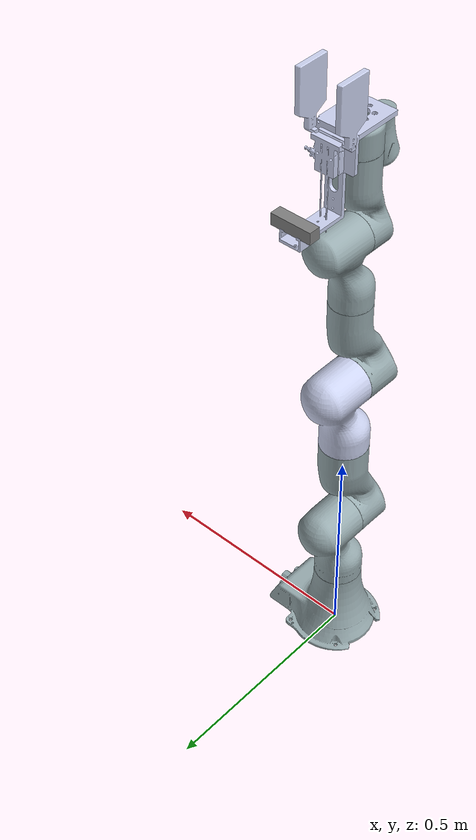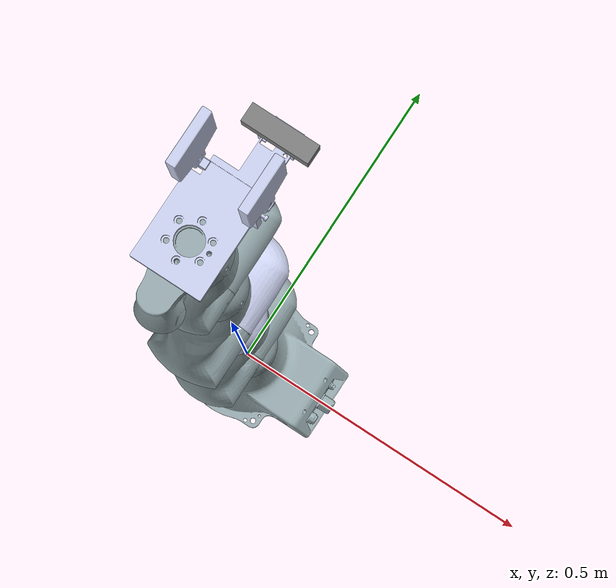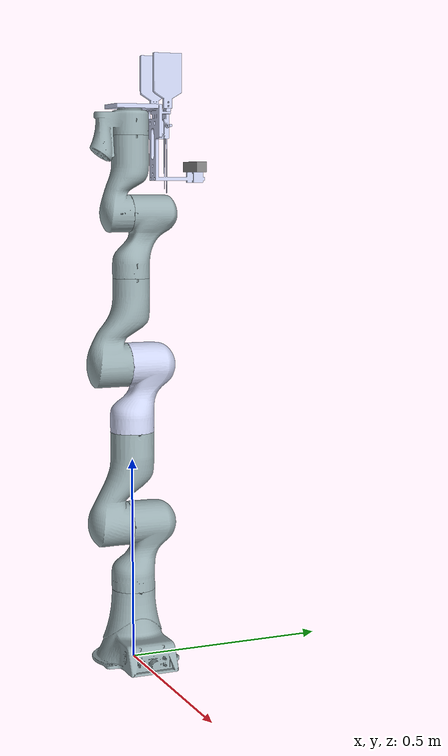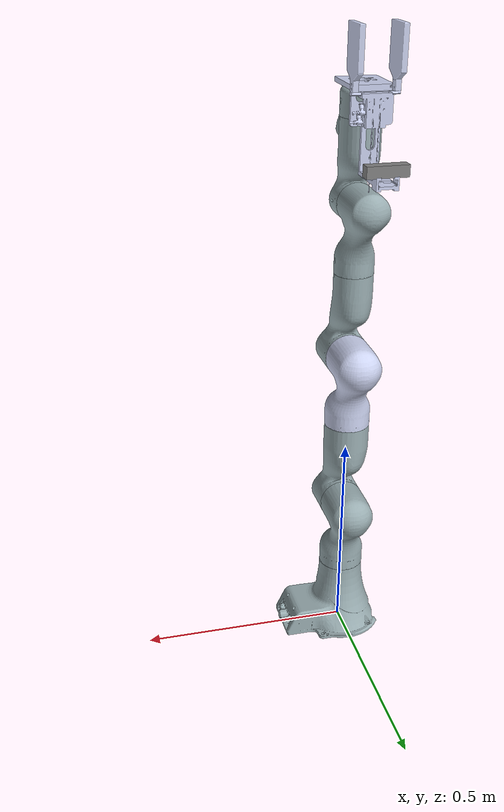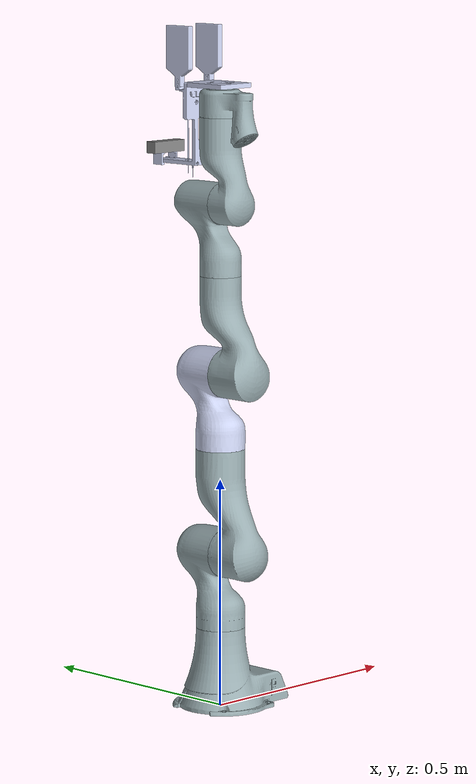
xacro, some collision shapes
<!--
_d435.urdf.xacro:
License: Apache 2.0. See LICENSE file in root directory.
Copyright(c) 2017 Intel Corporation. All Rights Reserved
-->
<?xml version="1.0"?>
<robot name="agv_cobot" xmlns:xacro="http://ros.org/wiki/xacro">
    <link name="agv_cobot_base">

<inertial>
            <origin xyz="0.017961 -8.9547E-06 0.062679" rpy="0 0 0" />
            <mass value="3.1281" />
            <inertia ixx="0.011805" ixy="3.8131E-06" ixz="0.0017999" iyy="0.01583" iyz="-8.2464E-07" izz="0.012949" />
        </inertial>

        <visual>
            <origin xyz="0 0 0" rpy="0 0 0" />
            <geometry>
                <mesh filename="package://agv_cobot/meshes/agv_cobot_base.STL" />
            </geometry>
            <material name="">
                <color rgba="0.59216 0.66667 0.68235 1" />
            </material>
        </visual>
        <collision>
            <origin xyz="0 0 0" rpy="0 0 0" />
            <geometry>
                <mesh filename="package://agv_cobot/meshes/agv_cobot_base.STL" />
            </geometry>
        </collision>
    </link>
    <link name="agv_cobot_1_link">

<inertial>
            <origin xyz="-3.3729E-06 0.025273 0.11306" rpy="0 0 0" />
            <mass value="1.8005" />
            <inertia ixx="0.0095698" ixy="-6.8876E-07" ixz="4.7542E-07" iyy="0.0085643" iyz="-0.0019573" izz="0.0033056" />
        </inertial>

        <visual>
            <origin xyz="0 0 0" rpy="0 0 0" />
            <geometry>
                <mesh filename="package://agv_cobot/meshes/agv_cobot_1_link.STL" />
            </geometry>
            <material name="">
                <color rgba="0.59216 0.66667 0.68235 1" />
            </material>
        </visual>
        <collision>
            <origin xyz="0 0 0" rpy="0 0 0" />
            <geometry>
                <mesh filename="package://agv_cobot/meshes/agv_cobot_1_link.STL" />
            </geometry>
        </collision>
    </link>
    <joint name="agv_cobot_1_joint" type="revolute">
        <origin xyz="0 0 0.175" rpy="0 0 0" />
        <parent link="agv_cobot_base" />
        <child link="agv_cobot_1_link" />
        <axis xyz="0 0 -1" />
        <limit lower="-3.14" upper="3.14" effort="40" velocity="5" />
    </joint>
    <link name="agv_cobot_2_link">

<inertial>
            <origin xyz="6.1113E-06 0.094688 0.012136" rpy="0 0 0" />
            <mass value="2.1853" />
            <inertia ixx="0.017961" ixy="2.0018E-07" ixz="-7.1727E-07" iyy="0.0044673" iyz="0.0045671" izz="0.016295" />
        </inertial>

        <visual>
            <origin xyz="0 0 0" rpy="0 0 0" />
            <geometry>
                <mesh filename="package://agv_cobot/meshes/agv_cobot_2_link.STL" />
            </geometry>
            <material name="">
                <color rgba="0.59216 0.66667 0.68235 1" />
            </material>
        </visual>
        <collision>
            <origin xyz="0 0 0" rpy="0 0 0" />
            <geometry>
                <mesh filename="package://agv_cobot/meshes/agv_cobot_2_link.STL" />
            </geometry>
        </collision>
    </link>
    <joint name="agv_cobot_2_joint" type="revolute">
        <origin xyz="0 -0.0155 0.1665" rpy="1.5708 0 0" />
        <parent link="agv_cobot_1_link" />
        <child link="agv_cobot_2_link" />
        <axis xyz="0 0 -1" />
        <limit lower="-3.14" upper="3.14" effort="40" velocity="5" />
    </joint>
    <link name="agv_cobot_3_link">

<inertial>
            <origin xyz="-1.4376E-06 0.025269 0.11105" rpy="0 0 0" />
            <mass value="1.8005" />
            <inertia ixx="0.0095704" ixy="-7.0638E-07" ixz="4.2065E-07" iyy="0.0085644" iyz="-0.0019581" izz="0.0033061" />
        </inertial>

        <visual>
            <origin xyz="0 0 0" rpy="0 0 0" />
            <geometry>
                <mesh filename="package://agv_cobot/meshes/agv_cobot_3_link.STL" />
            </geometry>
            <material name="">
                <color rgba="0.79216 0.81961 0.93333 1" />
            </material>
        </visual>
        <collision>
            <origin xyz="0 0 0" rpy="0 0 0" />
            <geometry>
                <mesh filename="package://agv_cobot/meshes/agv_cobot_3_link.STL" />
            </geometry>
        </collision>
    </link>
    <joint name="agv_cobot_3_joint" type="revolute">
        <origin xyz="0 0.2295 -0.015501" rpy="-1.5708 0 0" />
        <parent link="agv_cobot_2_link" />
        <child link="agv_cobot_3_link" />
        <axis xyz="0 0 -1" />
        <limit lower="-3.14" upper="3.14" effort="40" velocity="5" />
    </joint>
    <link name="agv_cobot_4_link">

<inertial>
            <origin xyz="-2.8466E-06 0.075669 0.019416" rpy="0 0 0" />
            <mass value="1.8001" />
            <inertia ixx="0.013099" ixy="5.1414E-07" ixz="-1.4286E-07" iyy="0.0033653" iyz="0.003477" izz="0.011753" />
        </inertial>

        <visual>
            <origin xyz="0 0 0" rpy="0 0 0" />
            <geometry>
                <mesh filename="package://agv_cobot/meshes/agv_cobot_4_link.STL" />
            </geometry>
            <material name="">
                <color rgba="0.59216 0.66667 0.68235 1" />
            </material>
        </visual>
        <collision>
            <origin xyz="0 0 0" rpy="0 0 0" />
            <geometry>
                <mesh filename="package://agv_cobot/meshes/agv_cobot_4_link.STL" />
            </geometry>
        </collision>
    </link>
    <joint name="agv_cobot_4_joint" type="revolute">
        <origin xyz="0 -0.0135 0.1645" rpy="1.5708 0 0" />
        <parent link="agv_cobot_3_link" />
        <child link="agv_cobot_4_link" />
        <axis xyz="0 0 -1" />
        <limit lower="-3.14" upper="3.14" effort="40" velocity="5" />
    </joint>
    <link name="agv_cobot_5_link">

<inertial>
            <origin xyz="-1.221E-05 0.031276 0.1025" rpy="0 0 0" />
            <mass value="1.2958" />
            <inertia ixx="0.0059855" ixy="-4.7385E-07" ixz="-5.4528E-07" iyy="0.0048983" iyz="-0.0015266" izz="0.0022675" />
        </inertial>

        <visual>
            <origin xyz="0 0 0" rpy="0 0 0" />
            <geometry>
                <mesh filename="package://agv_cobot/meshes/agv_cobot_5_link.STL" />
            </geometry>
            <material name="">
                <color rgba="0.59216 0.66667 0.68235 1" />
            </material>
        </visual>
        <collision>
            <origin xyz="0 0 0" rpy="0 0 0" />
            <geometry>
                <mesh filename="package://agv_cobot/meshes/agv_cobot_5_link.STL" />
            </geometry>
        </collision>
    </link>
    <joint name="agv_cobot_5_joint" type="revolute">
        <origin xyz="0 0.2178 -0.0135" rpy="-1.5708 0 0" />
        <parent link="agv_cobot_4_link" />
        <child link="agv_cobot_5_link" />
        <axis xyz="0 0 -1" />
        <limit lower="-3.14" upper="3.14" effort="40" velocity="5" />
    </joint>
    <link name="agv_cobot_6_link">

<inertial>
            <origin xyz="-1.2745E-05 0.084294 0.0033492" rpy="0 0 0" />
            <mass value="1.2251" />
            <inertia ixx="0.0062841" ixy="-3.5019E-07" ixz="1.141E-07" iyy="0.0014649" iyz="0.0012842" izz="0.0059858" />
        </inertial>

        <visual>
            <origin xyz="0 0 0" rpy="0 0 0" />
            <geometry>
                <mesh filename="package://agv_cobot/meshes/agv_cobot_6_link.STL" />
            </geometry>
            <material name="">
                <color rgba="0.59216 0.66667 0.68235 1" />
            </material>
        </visual>
        <collision>
            <origin xyz="0 0 0" rpy="0 0 0" />
            <geometry>
                <mesh filename="package://agv_cobot/meshes/agv_cobot_6_link.STL" />
            </geometry>
        </collision>
    </link>
    <joint name="agv_cobot_6_joint" type="revolute">
        <origin xyz="0 -0.0118 0.1482" rpy="1.5708 0 0" />
        <parent link="agv_cobot_5_link" />
        <child link="agv_cobot_6_link" />
        <axis xyz="0 0 -1" />
        <limit lower="-3.14" upper="3.14" effort="40" velocity="5" />
    </joint>
    <link name="agv_cobot_7_link">

<inertial>
            <origin xyz="-4.7405E-05 -0.023063 0.012243" rpy="0 0 0" />
            <mass value="0.54274" />
            <inertia ixx="0.0011664" ixy="-2.239E-07" ixz="4.2105E-07" iyy="0.00063841" iyz="-0.00028236" izz="0.00095196" />
        </inertial>

        <visual>
            <origin xyz="0 0 0" rpy="0 0 0" />
            <geometry>
                <mesh filename="package://agv_cobot/meshes/agv_cobot_7_link.STL" />
            </geometry>
            <material name="">
                <color rgba="0.59216 0.66667 0.68235 1" />
            </material>
        </visual>
        <collision>
            <origin xyz="0 0 0" rpy="0 0 0" />
            <geometry>
                <mesh filename="package://agv_cobot/meshes/agv_cobot_7_link.STL" />
            </geometry>
        </collision>
    </link>
    <joint name="agv_cobot_7_base" type="revolute">
        <origin xyz="0 0.1933 -0.0118" rpy="-1.5708 0 0" />
        <parent link="agv_cobot_6_link" />
        <child link="agv_cobot_7_link" />
        <axis xyz="0 0 -1" />
        <limit lower="-3.14" upper="3.14" effort="40" velocity="5" />
    </joint>
    <link name="agv_grip_base">

<inertial>
            <origin xyz="0.061275 0.00045549 0.055237" rpy="0 0 0" />
            <mass value="0.2556" />
            <inertia ixx="0.00032252" ixy="-3.3909E-07" ixz="-4.8471E-07" iyy="0.00033384" iyz="2.7384E-08" izz="0.00023961" />
        </inertial>

        <visual>
            <origin xyz="0 0 0" rpy="0 0 0" />
            <geometry>
                <mesh filename="package://agv_cobot/meshes/agv_grip_base.STL" />
            </geometry>
            <material name="">
                <color rgba="0.79216 0.81961 0.93333 1" />
            </material>
        </visual>
        <collision>
            <origin xyz="0 0 0" rpy="0 0 0" />
            <geometry>
                <mesh filename="package://agv_cobot/meshes/agv_grip_base.STL" />
            </geometry>
        </collision>
    </link>
    <joint name="agv_grip_connection_joint" type="fixed">
        <origin xyz="0 0 0.0571" rpy="0 3.14 -1.57" />
        <parent link="agv_cobot_7_link" />
        <child link="agv_grip_base" />
        <axis xyz="0 0 0" />
        <limit lower="-3.14" upper="3.14" effort="1" velocity="5" />
    </joint>

    <!-- Realsense Link -->
  <xacro:include filename="$(find agv_cobot)/urdf/_d435.urdf.xacro" />
  <sensor_d435 parent="agv_grip_base">
    <origin xyz="0.15455 0 0.139" rpy="0 1.5707 0"/>
  </sensor_d435>

<link
    name="agv_leftgrip">
    <inertial>
      <origin
        xyz="-0.044287 7.8328E-08 0.080592"
        rpy="0 0 0" />
      <mass
        value="0.091742" />
      <inertia
        ixx="0.00012343"
        ixy="-2.2005E-13"
        ixz="-1.6329E-07"
        iyy="9.1345E-05"
        iyz="-1.62E-10"
        izz="3.4344E-05" />
    </inertial>
    <visual>
      <origin
        xyz="0 0 0"
        rpy="0 0 0" />
      <geometry>
        <mesh
          filename="package://agv_cobot/meshes/agv_leftgrip.STL" />
      </geometry>
      <material
        name="">
        <color
          rgba="0.79216 0.81961 0.93333 1" />
      </material>
    </visual>
    <collision>
      <origin
        xyz="0 0 0"
        rpy="0 0 0" />
      <geometry>
        <mesh
          filename="package://agv_cobot/meshes/agv_leftgrip.STL" />
      </geometry>
    </collision>
  </link>
  <joint
    name="agv_leftgrip_joint"
    type="prismatic">
    <origin
      xyz="0.07915 0 0.0094"
      rpy="3.14 0 1.5707" />
    <parent
      link="agv_grip_base" />
    <child
      link="agv_leftgrip" />
    <axis
      xyz="1 0 0" />
    <limit
      lower="0"
      upper="0.038"
      effort="0"
      velocity="0" />
  </joint>
  <link
    name="agv_rightgrip">
    <inertial>
      <origin
        xyz="0.044287 -7.8328E-08 0.080592"
        rpy="0 0 0" />
      <mass
        value="0.091742" />
      <inertia
        ixx="0.00012343"
        ixy="-2.2005E-13"
        ixz="1.6329E-07"
        iyy="9.1345E-05"
        iyz="1.62E-10"
        izz="3.4344E-05" />
    </inertial>
    <visual>
      <origin
        xyz="0 0 0"
        rpy="0 0 0" />
      <geometry>
        <mesh
          filename="package://agv_cobot/meshes/agv_rightgrip.STL" />
      </geometry>
      <material
        name="">
        <color
          rgba="0.79216 0.81961 0.93333 1" />
      </material>
    </visual>
    <collision>
      <origin
        xyz="0 0 0"
        rpy="0 0 0" />
      <geometry>
        <mesh
          filename="package://agv_cobot/meshes/agv_rightgrip.STL" />
      </geometry>
    </collision>
  </link>
  <joint
    name="agv_rightgrip_joint"
    type="prismatic">
    <origin
      xyz="0.07915 0 0.0094"
      rpy="3.14 0 1.5707" />
    <parent
      link="agv_grip_base" />
    <child
      link="agv_rightgrip" />
    <axis
      xyz="-1 0 0" />
    <limit
      lower="0"
      upper="0.038"
      effort="10"
      velocity="5" />
  </joint>
    <gazebo reference="agv_leftgrip">
      <kp>1000000.0</kp>
      <kd>1.0</kd>
      <mu1>100.0</mu1>
      <mu2>100.0</mu2>
      <minDepth>0.003</minDepth>
    </gazebo>

    <gazebo reference="agv_rightgrip">
      <kp>1000000.0</kp>
      <kd>1.0</kd>
      <mu1>100.0</mu1>
      <mu2>100.0</mu2>
      <minDepth>0.003</minDepth>
    </gazebo>

 <gazebo>
   <plugin name="gazebo_grasp_fix" filename="libgazebo_grasp_fix.so">
        <arm>
           <arm_name>cobot</arm_name>
           <palm_link> agv_grip_base  </palm_link>
           <gripper_link> agv_leftgrip </gripper_link>
           <gripper_link> agv_rightgrip </gripper_link>
        </arm>
       <forces_angle_tolerance>100</forces_angle_tolerance>
       <update_rate>4</update_rate>
       <grip_count_threshold>4</grip_count_threshold>
       <max_grip_count>8</max_grip_count>
       <release_tolerance>0.005</release_tolerance>
       <disable_collisions_on_attach>false</disable_collisions_on_attach>
       <contact_topic>__default_topic__</contact_topic>
    </plugin>
</gazebo>

    <gazebo>
      <gripper name="grasping">
        <grasp_check>
          <attach_steps>1</attach_steps>
          <detach_steps>1</detach_steps>
          <min_contact_count>1</min_contact_count>
        </grasp_check>
        <gripper_link>agv_leftgrip</gripper_link>
        <palm_link>agv_rightgrip</palm_link>
      </gripper>
    </gazebo>

</robot>

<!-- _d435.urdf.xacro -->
<robot name="sensor_d435" xmlns:xacro="http://ros.org/wiki/xacro">
  <!--File includes-->
  <xacro:include filename="$(find agv_cobot)/urdf/_d435.gazebo.xacro"/>

  <xacro:macro name="sensor_d435" params="name:=realSense topics_ns:=realsense parent *origin">
    <xacro:property name="M_PI" value="3.1415926535897931" />

    <!-- The following values are approximate, and the camera node
     publishing TF values with actual calibrated camera extrinsic values -->
    <xacro:property name="d435_cam_depth_to_left_ir_offset" value="0.0"/>
    <xacro:property name="d435_cam_depth_to_right_ir_offset" value="0.0"/>
    <xacro:property name="d435_cam_depth_to_color_offset" value="0.0"/>

    <!-- The following values model the aluminum peripherial case for the
  	D435 camera, with the camera joint represented by the actual
  	peripherial camera tripod mount -->
    <xacro:property name="d435_cam_width" value="0.090"/>
    <xacro:property name="d435_cam_height" value="0.025"/>
    <xacro:property name="d435_cam_depth" value="0.02505"/>
    <xacro:property name="d435_cam_mount_from_center_offset" value="0.0149"/>

    <!-- The following offset is relative the the physical D435 camera peripherial
  	camera tripod mount -->
    <xacro:property name="d435_cam_depth_px" value="${d435_cam_mount_from_center_offset}"/>
    <xacro:property name="d435_cam_depth_py" value="0.0175"/>
    <xacro:property name="d435_cam_depth_pz" value="${d435_cam_height/2}"/>

    <material name="${name}_aluminum">
	  <color rgba="0.5 0.5 0.5 1"/>
    </material>

    <!-- camera body, with origin at bottom screw mount -->
    <joint name="${name}_joint" type="fixed">
      <xacro:insert_block name="origin" />
      <parent link="${parent}"/>
      <child link="${name}_bottom_screw_frame" />
    </joint>
    <link name="${name}_bottom_screw_frame"/>

    <joint name="${name}_link_joint" type="fixed">
      <origin xyz="0 ${d435_cam_depth_py} ${d435_cam_depth_pz}" rpy="0 0 0"/>
      <parent link="${name}_bottom_screw_frame"/>
      <child link="${name}_link" />
    </joint>

    <link name="${name}_link">
      <visual>
      <origin xyz="${d435_cam_mount_from_center_offset} ${-d435_cam_depth_py} 0" rpy="${M_PI/2} 0 ${M_PI/2}"/>
        <geometry>
          <mesh filename="package://realsense2_description/meshes/d435.dae" />
        </geometry>
        <material name="${name}_aluminum"/>
      </visual>
      <collision>
        <origin xyz="0 ${-d435_cam_depth_py} 0" rpy="0 0 0"/>
        <geometry>
        <box size="${d435_cam_depth} ${d435_cam_width} ${d435_cam_height}"/>
        </geometry>
      </collision>
      <inertial>
        <!-- The following are not reliable values, and should not be used for modeling -->
        <mass value="0.564" />
        <origin xyz="0 0 0" />
        <inertia ixx="0.003881243" ixy="0.0" ixz="0.0" iyy="0.000498940" iyz="0.0" izz="0.003879257" />
      </inertial>
    </link>

    <!-- camera depth joints and links -->
    <joint name="${name}_depth_joint" type="fixed">
      <origin xyz="0 0 0" rpy="0 0 0"/>
      <parent link="${name}_link"/>
      <child link="${name}_depth_frame" />
    </joint>
    <link name="${name}_depth_frame"/>

    <joint name="${name}_depth_optical_joint" type="fixed">
      <origin xyz="0 0 0" rpy="${-M_PI/2} 0 ${-M_PI/2}" />
      <parent link="${name}_depth_frame" />
      <child link="${name}_depth_optical_frame" />
    </joint>
    <link name="${name}_depth_optical_frame"/>

    <!-- camera left IR joints and links -->
    <joint name="${name}_left_ir_joint" type="fixed">
      <origin xyz="0 ${d435_cam_depth_to_left_ir_offset} 0" rpy="0 0 0" />
      <parent link="${name}_depth_frame" />
      <child link="${name}_left_ir_frame" />
    </joint>
    <link name="${name}_left_ir_frame"/>

    <joint name="${name}_left_ir_optical_joint" type="fixed">
      <origin xyz="0 0 0" rpy="${-M_PI/2} 0 ${-M_PI/2}" />
      <parent link="${name}_left_ir_frame" />
      <child link="${name}_left_ir_optical_frame" />
    </joint>
    <link name="${name}_left_ir_optical_frame"/>

    <!-- camera right IR joints and links -->
    <joint name="${name}_right_ir_joint" type="fixed">
      <origin xyz="0 ${d435_cam_depth_to_right_ir_offset} 0" rpy="0 0 0" />
      <parent link="${name}_depth_frame" />
      <child link="${name}_right_ir_frame" />
    </joint>
    <link name="${name}_right_ir_frame"/>

    <joint name="${name}_right_ir_optical_joint" type="fixed">
      <origin xyz="0 0 0" rpy="${-M_PI/2} 0 ${-M_PI/2}" />
      <parent link="${name}_right_ir_frame" />
      <child link="${name}_right_ir_optical_frame" />
    </joint>
    <link name="${name}_right_ir_optical_frame"/>

    <!-- camera color joints and links -->
    <joint name="${name}_color_joint" type="fixed">
      <origin xyz="0 ${d435_cam_depth_to_color_offset} 0" rpy="0 0 0" />
      <parent link="${name}_depth_frame" />
      <child link="${name}_color_frame" />
    </joint>
    <link name="${name}_color_frame"/>

    <joint name="${name}_color_optical_joint" type="fixed">
      <origin xyz="0 0 0" rpy="${-M_PI/2} 0 ${-M_PI/2}" />
      <parent link="${name}_color_frame" />
      <child link="realsense_camera_link" />
    </joint>
    <link name="realsense_camera_link"/>
 <!-- infrared1_optical_frame="${name}_left_ir_optical_frame" infrared2_optical_frame="${name}_right_ir_optical_frame" -->
    <!-- Realsense Gazebo Plugin -->
    <xacro:gazebo_d435 camera_name="${name}" reference_link="${name}_link" topics_ns="${topics_ns}" depth_optical_frame="${name}_depth_optical_frame" color_optical_frame="${name}_color_optical_frame" infrared1_optical_frame="${name}_left_ir_optical_frame" infrared2_optical_frame="${name}_right_ir_optical_frame"/>

  </xacro:macro>
</robot>
